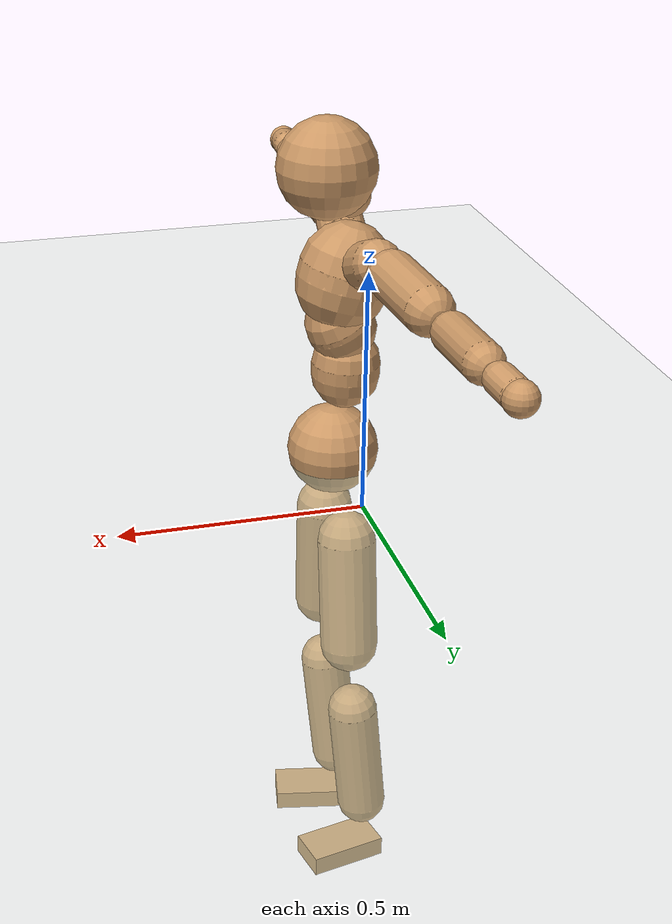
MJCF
<mujoco model="humanoid">
  <compiler coordinate="local" angle="radian"/>
  <default>
    <joint damping="0.0" armature="0.01" stiffness="0.0" limited="true"/>
    <geom conaffinity="1" condim="3" contype="7" margin="0.001" rgba="0.8 0.6 .4 1"/>
  </default>
  <asset>
    <texture type="skybox" builtin="gradient" rgb1=".4 .5 .6" rgb2="0 0 0" width="100" height="100"/>
    <texture builtin="flat" height="1278" mark="cross" markrgb="1 1 1" name="texgeom" random="0.01" rgb1="0.8 0.6 0.4" rgb2="0.8 0.6 0.4" type="cube" width="127"/>
    <texture builtin="checker" height="100" name="texplane" rgb1="0 0 0" rgb2="0.8 0.8 0.8" type="2d" width="100"/>
    <material name="MatPlane" reflectance="0.5" shininess="1" specular="1" texrepeat="60 60" texture="texplane"/>
    <material name="geom" texture="texgeom" texuniform="true"/>
  </asset>
  <worldbody>
    <light cutoff="100" diffuse="1 1 1" dir="-0 0 -1.3" directional="true" exponent="1" pos="0 0 1.3" specular=".1 .1 .1"/>
    <geom conaffinity="1" condim="3" name="floor" pos="0 0 0" rgba="0.8 0.9 0.8 1" size="100 100 .2" type="plane" material="MatPlane"/>
    <body name="Pelvis" pos="-0.0001 -0.2231 0.027">
      <freejoint name="Pelvis"/>
      <geom type="sphere" contype="1" conaffinity="1" density="500" size="0.0970" pos="0.0000 0.0000 0.0000" name="Pelvis"/>
      <body name="L_Hip" pos="-0.0093 0.0739 -0.0972">
        <joint name="L_Hip_x" type="hinge" pos="0 0 0" axis="1 0 0" stiffness="800" damping="80" armature="0.02" range="-180.0000 180.0000"/>
        <joint name="L_Hip_y" type="hinge" pos="0 0 0" axis="0 1 0" stiffness="800" damping="80" armature="0.02" range="-180.0000 180.0000"/>
        <joint name="L_Hip_z" type="hinge" pos="0 0 0" axis="0 0 1" stiffness="800" damping="80" armature="0.02" range="-180.0000 180.0000"/>
        <geom type="capsule" contype="1" conaffinity="1" density="500" fromto="-0.0010 0.0079 -0.0841 -0.0042 0.0314 -0.3365" size="0.0625" name="L_Hip"/>
        <body name="L_Knee" pos="-0.0052 0.0393 -0.4206">
          <joint name="L_Knee_x" type="hinge" pos="0 0 0" axis="1 0 0" stiffness="800" damping="80" armature="0.02" range="-180.0000 180.0000"/>
          <joint name="L_Knee_y" type="hinge" pos="0 0 0" axis="0 1 0" stiffness="800" damping="80" armature="0.02" range="-180.0000 180.0000"/>
          <joint name="L_Knee_z" type="hinge" pos="0 0 0" axis="0 0 1" stiffness="800" damping="80" armature="0.02" range="-180.0000 180.0000"/>
          <geom type="capsule" contype="1" conaffinity="1" density="500" fromto="-0.0095 -0.0025 -0.0894 -0.0382 -0.0102 -0.3577" size="0.0549" name="L_Knee"/>
          <body name="L_Ankle" pos="-0.0477 -0.0127 -0.4471">
            <joint name="L_Ankle_x" type="hinge" pos="0 0 0" axis="1 0 0" stiffness="800" damping="80" armature="0.02" range="-180.0000 180.0000"/>
            <joint name="L_Ankle_y" type="hinge" pos="0 0 0" axis="0 1 0" stiffness="800" damping="80" armature="0.02" range="-180.0000 180.0000"/>
            <joint name="L_Ankle_z" type="hinge" pos="0 0 0" axis="0 0 1" stiffness="800" damping="80" armature="0.02" range="-180.0000 180.0000"/>
            <geom type="box" contype="1" conaffinity="1" density="500" pos="0.0622 0.0129 -0.0314" size="0.0867 0.0469 0.0226" quat="0.9948 0.0000 0.0000 0.1020" name="L_Ankle"/>
            <body name="L_Toe" pos="0.1243 0.0258 -0.0627">
              <joint name="L_Toe_x" type="hinge" pos="0 0 0" axis="1 0 0" stiffness="500" damping="50" armature="0.02" range="-180.0000 180.0000"/>
              <joint name="L_Toe_y" type="hinge" pos="0 0 0" axis="0 1 0" stiffness="500" damping="50" armature="0.02" range="-180.0000 180.0000"/>
              <joint name="L_Toe_z" type="hinge" pos="0 0 0" axis="0 0 1" stiffness="500" damping="50" armature="0.02" range="-180.0000 180.0000"/>
              <geom type="box" contype="1" conaffinity="1" density="500" pos="0.0000 0.0000 0.0312" size="0.0009 0.0023 0.0011" quat="0.9941 0.0000 0.0000 0.1080" name="L_Toe"/>
            </body>
          </body>
        </body>
      </body>
      <body name="R_Hip" pos="-0.005 -0.0707 -0.0965">
        <joint name="R_Hip_x" type="hinge" pos="0 0 0" axis="1 0 0" stiffness="800" damping="80" armature="0.02" range="-180.0000 180.0000"/>
        <joint name="R_Hip_y" type="hinge" pos="0 0 0" axis="0 1 0" stiffness="800" damping="80" armature="0.02" range="-180.0000 180.0000"/>
        <joint name="R_Hip_z" type="hinge" pos="0 0 0" axis="0 0 1" stiffness="800" damping="80" armature="0.02" range="-180.0000 180.0000"/>
        <geom type="capsule" contype="1" conaffinity="1" density="500" fromto="-0.0016 -0.0093 -0.0857 -0.0064 -0.0371 -0.3430" size="0.0615" name="R_Hip"/>
        <body name="R_Knee" pos="-0.0079 -0.0463 -0.4287">
          <joint name="R_Knee_x" type="hinge" pos="0 0 0" axis="1 0 0" stiffness="800" damping="80" armature="0.02" range="-180.0000 180.0000"/>
          <joint name="R_Knee_y" type="hinge" pos="0 0 0" axis="0 1 0" stiffness="800" damping="80" armature="0.02" range="-180.0000 180.0000"/>
          <joint name="R_Knee_z" type="hinge" pos="0 0 0" axis="0 0 1" stiffness="800" damping="80" armature="0.02" range="-180.0000 180.0000"/>
          <geom type="capsule" contype="1" conaffinity="1" density="500" fromto="-0.0091 0.0033 -0.0896 -0.0364 0.0131 -0.3584" size="0.0552" name="R_Knee"/>
          <body name="R_Ankle" pos="-0.0455 0.0164 -0.448">
            <joint name="R_Ankle_x" type="hinge" pos="0 0 0" axis="1 0 0" stiffness="800" damping="80" armature="0.02" range="-180.0000 180.0000"/>
            <joint name="R_Ankle_y" type="hinge" pos="0 0 0" axis="0 1 0" stiffness="800" damping="80" armature="0.02" range="-180.0000 180.0000"/>
            <joint name="R_Ankle_z" type="hinge" pos="0 0 0" axis="0 0 1" stiffness="800" damping="80" armature="0.02" range="-180.0000 180.0000"/>
            <geom type="box" contype="1" conaffinity="1" density="500" pos="0.0640 -0.0125 -0.0266" size="0.0892 0.0481 0.0219" quat="0.9954 0.0000 0.0000 -0.0963" name="R_Ankle"/>
            <body name="R_Toe" pos="0.1281 -0.025 -0.0532">
              <joint name="R_Toe_x" type="hinge" pos="0 0 0" axis="1 0 0" stiffness="500" damping="50" armature="0.02" range="-180.0000 180.0000"/>
              <joint name="R_Toe_y" type="hinge" pos="0 0 0" axis="0 1 0" stiffness="500" damping="50" armature="0.02" range="-180.0000 180.0000"/>
              <joint name="R_Toe_z" type="hinge" pos="0 0 0" axis="0 0 1" stiffness="500" damping="50" armature="0.02" range="-180.0000 180.0000"/>
              <geom type="box" contype="1" conaffinity="1" density="500" pos="0.0000 0.0000 0.0294" size="0.0009 0.0023 0.0012" quat="0.9962 0.0000 0.0000 -0.0875" name="R_Toe"/>
            </body>
          </body>
        </body>
      </body>
      <body name="Torso" pos="-0.0239 -0.0031 0.1124">
        <joint name="Torso_x" type="hinge" pos="0 0 0" axis="1 0 0" stiffness="1000" damping="100" armature="0.02" range="-180.0000 180.0000"/>
        <joint name="Torso_y" type="hinge" pos="0 0 0" axis="0 1 0" stiffness="1000" damping="100" armature="0.02" range="-180.0000 180.0000"/>
        <joint name="Torso_z" type="hinge" pos="0 0 0" axis="0 0 1" stiffness="1000" damping="100" armature="0.02" range="-180.0000 180.0000"/>
        <geom type="capsule" contype="1" conaffinity="1" density="500" fromto="-0.0016 0.0026 0.0842 -0.0011 0.0017 0.0561" size="0.072" name="Torso"/>
        <body name="Spine" pos="-0.0027 0.0044 0.1403">
          <joint name="Spine_x" type="hinge" pos="0 0 0" axis="1 0 0" stiffness="1000" damping="100" armature="0.02" range="-180.0000 180.0000"/>
          <joint name="Spine_y" type="hinge" pos="0 0 0" axis="0 1 0" stiffness="1000" damping="100" armature="0.02" range="-180.0000 180.0000"/>
          <joint name="Spine_z" type="hinge" pos="0 0 0" axis="0 0 1" stiffness="1000" damping="100" armature="0.02" range="-180.0000 180.0000"/>
          <geom type="capsule" contype="1" conaffinity="1" density="500" fromto="0.0175 0.0006 0.0324 0.0117 0.0004 0.0216" size="0.0725" name="Spine"/>
          <body name="Chest" pos="0.0292 0.001 0.054">
            <joint name="Chest_x" type="hinge" pos="0 0 0" axis="1 0 0" stiffness="1000" damping="100" armature="0.02" range="-180.0000 180.0000"/>
            <joint name="Chest_y" type="hinge" pos="0 0 0" axis="0 1 0" stiffness="1000" damping="100" armature="0.02" range="-180.0000 180.0000"/>
            <joint name="Chest_z" type="hinge" pos="0 0 0" axis="0 0 1" stiffness="1000" damping="100" armature="0.02" range="-180.0000 180.0000"/>
            <geom type="capsule" contype="1" conaffinity="1" density="500" fromto="-0.0250 -0.0012 0.0945 -0.0166 -0.0008 0.0630" size="0.0971" name="Chest"/>
            <body name="Neck" pos="-0.042 -0.0038 0.2278">
              <joint name="Neck_x" type="hinge" pos="0 0 0" axis="1 0 0" stiffness="500" damping="50" armature="0.02" range="-180.0000 180.0000"/>
              <joint name="Neck_y" type="hinge" pos="0 0 0" axis="0 1 0" stiffness="500" damping="50" armature="0.02" range="-180.0000 180.0000"/>
              <joint name="Neck_z" type="hinge" pos="0 0 0" axis="0 0 1" stiffness="500" damping="50" armature="0.02" range="-180.0000 180.0000"/>
              <geom type="capsule" contype="1" conaffinity="1" density="500" fromto="0.0123 0.0011 0.0155 0.0490 0.0043 0.0619" size="0.0422" name="Neck"/>
              <body name="Head" pos="0.0613 0.0054 0.0774">
                <joint name="Head_x" type="hinge" pos="0 0 0" axis="1 0 0" stiffness="500" damping="50" armature="0.02" range="-180.0000 180.0000"/>
                <joint name="Head_y" type="hinge" pos="0 0 0" axis="0 1 0" stiffness="500" damping="50" armature="0.02" range="-180.0000 180.0000"/>
                <joint name="Head_z" type="hinge" pos="0 0 0" axis="0 0 1" stiffness="500" damping="50" armature="0.02" range="-180.0000 180.0000"/>
                <geom type="sphere" contype="1" conaffinity="1" density="500" size="0.1018" pos="0.0000 0.0000 0.0000" name="Head"/>
              </body>
            </body>
            <body name="L_Thorax" pos="-0.0386 0.0751 0.1232">
              <joint name="L_Thorax_x" type="hinge" pos="0 0 0" axis="1 0 0" stiffness="500" damping="50" armature="0.02" range="-180.0000 180.0000"/>
              <joint name="L_Thorax_y" type="hinge" pos="0 0 0" axis="0 1 0" stiffness="500" damping="50" armature="0.02" range="-180.0000 180.0000"/>
              <joint name="L_Thorax_z" type="hinge" pos="0 0 0" axis="0 0 1" stiffness="500" damping="50" armature="0.02" range="-180.0000 180.0000"/>
              <geom type="capsule" contype="1" conaffinity="1" density="500" fromto="-0.0013 0.0163 0.0067 -0.0053 0.0653 0.0268" size="0.0506" name="L_Thorax"/>
              <body name="L_Shoulder" pos="-0.0066 0.0817 0.0335">
                <joint name="L_Shoulder_x" type="hinge" pos="0 0 0" axis="1 0 0" stiffness="500" damping="50" armature="0.02" range="-720.0000 720.0000"/>
                <joint name="L_Shoulder_y" type="hinge" pos="0 0 0" axis="0 1 0" stiffness="500" damping="50" armature="0.02" range="-720.0000 720.0000"/>
                <joint name="L_Shoulder_z" type="hinge" pos="0 0 0" axis="0 0 1" stiffness="500" damping="50" armature="0.02" range="-720.0000 720.0000"/>
                <geom type="capsule" contype="1" conaffinity="1" density="500" fromto="-0.0059 0.0546 -0.0034 -0.0237 0.2184 -0.0136" size="0.0498" name="L_Shoulder"/>
                <body name="L_Elbow" pos="-0.0296 0.273 -0.017">
                  <joint name="L_Elbow_x" type="hinge" pos="0 0 0" axis="1 0 0" stiffness="500" damping="50" armature="0.02" range="-720.0000 720.0000"/>
                  <joint name="L_Elbow_y" type="hinge" pos="0 0 0" axis="0 1 0" stiffness="500" damping="50" armature="0.02" range="-720.0000 720.0000"/>
                  <joint name="L_Elbow_z" type="hinge" pos="0 0 0" axis="0 0 1" stiffness="500" damping="50" armature="0.02" range="-720.0000 720.0000"/>
                  <geom type="capsule" contype="1" conaffinity="1" density="500" fromto="-0.0002 0.0513 0.0023 -0.0007 0.2050 0.0091" size="0.039" name="L_Elbow"/>
                  <body name="L_Wrist" pos="-0.0009 0.2563 0.0114">
                    <joint name="L_Wrist_x" type="hinge" pos="0 0 0" axis="1 0 0" stiffness="300" damping="30" armature="0.02" range="-180.0000 180.0000"/>
                    <joint name="L_Wrist_y" type="hinge" pos="0 0 0" axis="0 1 0" stiffness="300" damping="30" armature="0.02" range="-180.0000 180.0000"/>
                    <joint name="L_Wrist_z" type="hinge" pos="0 0 0" axis="0 0 1" stiffness="300" damping="30" armature="0.02" range="-180.0000 180.0000"/>
                    <geom type="capsule" contype="1" conaffinity="1" density="500" fromto="-0.0027 0.0162 -0.0020 -0.0109 0.0648 -0.0080" size="0.0304" name="L_Wrist"/>
                    <body name="L_Hand" pos="-0.0137 0.081 -0.01">
                      <joint name="L_Hand_x" type="hinge" pos="0 0 0" axis="1 0 0" stiffness="300" damping="30" armature="0.02" range="-180.0000 180.0000"/>
                      <joint name="L_Hand_y" type="hinge" pos="0 0 0" axis="0 1 0" stiffness="300" damping="30" armature="0.02" range="-180.0000 180.0000"/>
                      <joint name="L_Hand_z" type="hinge" pos="0 0 0" axis="0 0 1" stiffness="300" damping="30" armature="0.02" range="-180.0000 180.0000"/>
                      <geom type="sphere" contype="1" conaffinity="1" density="500" size="0.0326" pos="0.0000 0.0000 0.0000" name="L_Hand"/>
                    </body>
                  </body>
                </body>
              </body>
            </body>
            <body name="R_Thorax" pos="-0.0442 -0.0773 0.1214">
              <joint name="R_Thorax_x" type="hinge" pos="0 0 0" axis="1 0 0" stiffness="500" damping="50" armature="0.02" range="-180.0000 180.0000"/>
              <joint name="R_Thorax_y" type="hinge" pos="0 0 0" axis="0 1 0" stiffness="500" damping="50" armature="0.02" range="-180.0000 180.0000"/>
              <joint name="R_Thorax_z" type="hinge" pos="0 0 0" axis="0 0 1" stiffness="500" damping="50" armature="0.02" range="-180.0000 180.0000"/>
              <geom type="capsule" contype="1" conaffinity="1" density="500" fromto="-0.0015 -0.0170 0.0070 -0.0060 -0.0679 0.0282" size="0.0495" name="R_Thorax"/>
              <body name="R_Shoulder" pos="-0.0075 -0.0849 0.0352">
                <joint name="R_Shoulder_x" type="hinge" pos="0 0 0" axis="1 0 0" stiffness="500" damping="50" armature="0.02" range="-720.0000 720.0000"/>
                <joint name="R_Shoulder_y" type="hinge" pos="0 0 0" axis="0 1 0" stiffness="500" damping="50" armature="0.02" range="-720.0000 720.0000"/>
                <joint name="R_Shoulder_z" type="hinge" pos="0 0 0" axis="0 0 1" stiffness="500" damping="50" armature="0.02" range="-720.0000 720.0000"/>
                <geom type="capsule" contype="1" conaffinity="1" density="500" fromto="-0.0048 -0.0530 -0.0035 -0.0194 -0.2122 -0.0140" size="0.0515" name="R_Shoulder"/>
                <body name="R_Elbow" pos="-0.0242 -0.2652 -0.0175">
                  <joint name="R_Elbow_x" type="hinge" pos="0 0 0" axis="1 0 0" stiffness="500" damping="50" armature="0.02" range="-720.0000 720.0000"/>
                  <joint name="R_Elbow_y" type="hinge" pos="0 0 0" axis="0 1 0" stiffness="500" damping="50" armature="0.02" range="-720.0000 720.0000"/>
                  <joint name="R_Elbow_z" type="hinge" pos="0 0 0" axis="0 0 1" stiffness="500" damping="50" armature="0.02" range="-720.0000 720.0000"/>
                  <geom type="capsule" contype="1" conaffinity="1" density="500" fromto="-0.0011 -0.0531 0.0020 -0.0044 -0.2125 0.0081" size="0.0395" name="R_Elbow"/>
                  <body name="R_Wrist" pos="-0.0055 -0.2656 0.0101">
                    <joint name="R_Wrist_x" type="hinge" pos="0 0 0" axis="1 0 0" stiffness="300" damping="30" armature="0.02" range="-180.0000 180.0000"/>
                    <joint name="R_Wrist_y" type="hinge" pos="0 0 0" axis="0 1 0" stiffness="300" damping="30" armature="0.02" range="-180.0000 180.0000"/>
                    <joint name="R_Wrist_z" type="hinge" pos="0 0 0" axis="0 0 1" stiffness="300" damping="30" armature="0.02" range="-180.0000 180.0000"/>
                    <geom type="capsule" contype="1" conaffinity="1" density="500" fromto="-0.0021 -0.0163 -0.0015 -0.0084 -0.0653 -0.0059" size="0.0312" name="R_Wrist"/>
                    <body name="R_Hand" pos="-0.0105 -0.0817 -0.0073">
                      <joint name="R_Hand_x" type="hinge" pos="0 0 0" axis="1 0 0" stiffness="300" damping="30" armature="0.02" range="-180.0000 180.0000"/>
                      <joint name="R_Hand_y" type="hinge" pos="0 0 0" axis="0 1 0" stiffness="300" damping="30" armature="0.02" range="-180.0000 180.0000"/>
                      <joint name="R_Hand_z" type="hinge" pos="0 0 0" axis="0 0 1" stiffness="300" damping="30" armature="0.02" range="-180.0000 180.0000"/>
                      <geom type="sphere" contype="1" conaffinity="1" density="500" size="0.0328" pos="0.0000 0.0000 0.0000" name="R_Hand"/>
                    </body>
                  </body>
                </body>
              </body>
            </body>
          </body>
        </body>
      </body>
    </body>
  </worldbody>
  <actuator>
    <motor name="L_Hip_x" joint="L_Hip_x" gear="500"/>
    <motor name="L_Hip_y" joint="L_Hip_y" gear="500"/>
    <motor name="L_Hip_z" joint="L_Hip_z" gear="500"/>
    <motor name="L_Knee_x" joint="L_Knee_x" gear="500"/>
    <motor name="L_Knee_y" joint="L_Knee_y" gear="500"/>
    <motor name="L_Knee_z" joint="L_Knee_z" gear="500"/>
    <motor name="L_Ankle_x" joint="L_Ankle_x" gear="500"/>
    <motor name="L_Ankle_y" joint="L_Ankle_y" gear="500"/>
    <motor name="L_Ankle_z" joint="L_Ankle_z" gear="500"/>
    <motor name="L_Toe_x" joint="L_Toe_x" gear="500"/>
    <motor name="L_Toe_y" joint="L_Toe_y" gear="500"/>
    <motor name="L_Toe_z" joint="L_Toe_z" gear="500"/>
    <motor name="R_Hip_x" joint="R_Hip_x" gear="500"/>
    <motor name="R_Hip_y" joint="R_Hip_y" gear="500"/>
    <motor name="R_Hip_z" joint="R_Hip_z" gear="500"/>
    <motor name="R_Knee_x" joint="R_Knee_x" gear="500"/>
    <motor name="R_Knee_y" joint="R_Knee_y" gear="500"/>
    <motor name="R_Knee_z" joint="R_Knee_z" gear="500"/>
    <motor name="R_Ankle_x" joint="R_Ankle_x" gear="500"/>
    <motor name="R_Ankle_y" joint="R_Ankle_y" gear="500"/>
    <motor name="R_Ankle_z" joint="R_Ankle_z" gear="500"/>
    <motor name="R_Toe_x" joint="R_Toe_x" gear="500"/>
    <motor name="R_Toe_y" joint="R_Toe_y" gear="500"/>
    <motor name="R_Toe_z" joint="R_Toe_z" gear="500"/>
    <motor name="Torso_x" joint="Torso_x" gear="500"/>
    <motor name="Torso_y" joint="Torso_y" gear="500"/>
    <motor name="Torso_z" joint="Torso_z" gear="500"/>
    <motor name="Spine_x" joint="Spine_x" gear="500"/>
    <motor name="Spine_y" joint="Spine_y" gear="500"/>
    <motor name="Spine_z" joint="Spine_z" gear="500"/>
    <motor name="Chest_x" joint="Chest_x" gear="500"/>
    <motor name="Chest_y" joint="Chest_y" gear="500"/>
    <motor name="Chest_z" joint="Chest_z" gear="500"/>
    <motor name="Neck_x" joint="Neck_x" gear="500"/>
    <motor name="Neck_y" joint="Neck_y" gear="500"/>
    <motor name="Neck_z" joint="Neck_z" gear="500"/>
    <motor name="Head_x" joint="Head_x" gear="500"/>
    <motor name="Head_y" joint="Head_y" gear="500"/>
    <motor name="Head_z" joint="Head_z" gear="500"/>
    <motor name="L_Thorax_x" joint="L_Thorax_x" gear="500"/>
    <motor name="L_Thorax_y" joint="L_Thorax_y" gear="500"/>
    <motor name="L_Thorax_z" joint="L_Thorax_z" gear="500"/>
    <motor name="L_Shoulder_x" joint="L_Shoulder_x" gear="500"/>
    <motor name="L_Shoulder_y" joint="L_Shoulder_y" gear="500"/>
    <motor name="L_Shoulder_z" joint="L_Shoulder_z" gear="500"/>
    <motor name="L_Elbow_x" joint="L_Elbow_x" gear="500"/>
    <motor name="L_Elbow_y" joint="L_Elbow_y" gear="500"/>
    <motor name="L_Elbow_z" joint="L_Elbow_z" gear="500"/>
    <motor name="L_Wrist_x" joint="L_Wrist_x" gear="500"/>
    <motor name="L_Wrist_y" joint="L_Wrist_y" gear="500"/>
    <motor name="L_Wrist_z" joint="L_Wrist_z" gear="500"/>
    <motor name="L_Hand_x" joint="L_Hand_x" gear="500"/>
    <motor name="L_Hand_y" joint="L_Hand_y" gear="500"/>
    <motor name="L_Hand_z" joint="L_Hand_z" gear="500"/>
    <motor name="R_Thorax_x" joint="R_Thorax_x" gear="500"/>
    <motor name="R_Thorax_y" joint="R_Thorax_y" gear="500"/>
    <motor name="R_Thorax_z" joint="R_Thorax_z" gear="500"/>
    <motor name="R_Shoulder_x" joint="R_Shoulder_x" gear="500"/>
    <motor name="R_Shoulder_y" joint="R_Shoulder_y" gear="500"/>
    <motor name="R_Shoulder_z" joint="R_Shoulder_z" gear="500"/>
    <motor name="R_Elbow_x" joint="R_Elbow_x" gear="500"/>
    <motor name="R_Elbow_y" joint="R_Elbow_y" gear="500"/>
    <motor name="R_Elbow_z" joint="R_Elbow_z" gear="500"/>
    <motor name="R_Wrist_x" joint="R_Wrist_x" gear="500"/>
    <motor name="R_Wrist_y" joint="R_Wrist_y" gear="500"/>
    <motor name="R_Wrist_z" joint="R_Wrist_z" gear="500"/>
    <motor name="R_Hand_x" joint="R_Hand_x" gear="500"/>
    <motor name="R_Hand_y" joint="R_Hand_y" gear="500"/>
    <motor name="R_Hand_z" joint="R_Hand_z" gear="500"/>
  </actuator>
  <contact>
    <exclude body1="Torso" body2="Chest"/>
    <exclude body1="Head" body2="Chest"/>
    <exclude body1="R_Knee" body2="R_Toe"/>
    <exclude body1="R_Knee" body2="L_Ankle"/>
    <exclude body1="R_Knee" body2="L_Toe"/>
    <exclude body1="L_Knee" body2="L_Toe"/>
    <exclude body1="L_Knee" body2="R_Ankle"/>
    <exclude body1="L_Knee" body2="R_Toe"/>
    <exclude body1="L_Shoulder" body2="Chest"/>
    <exclude body1="R_Shoulder" body2="Chest"/>
  </contact>
  <sensor/>
  <size njmax="700" nconmax="700"/>
</mujoco>
